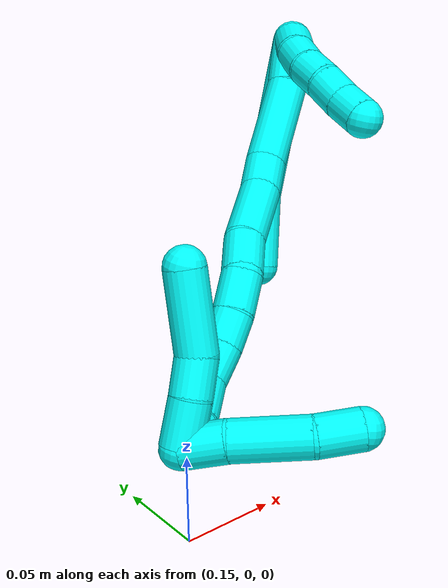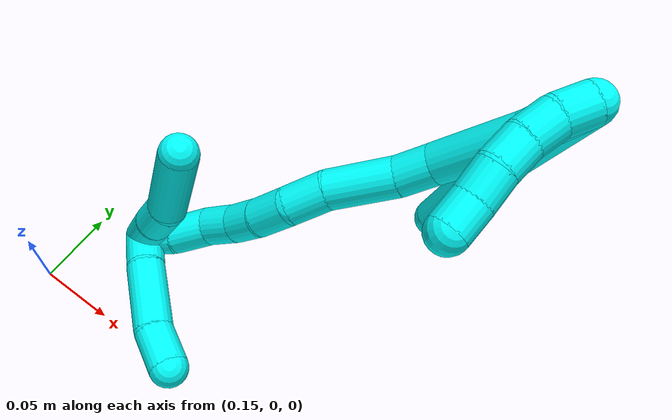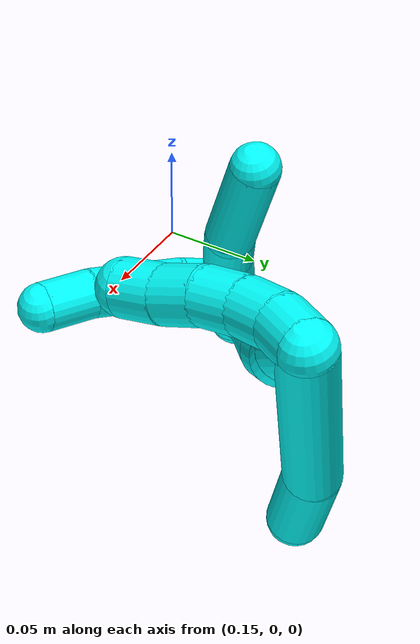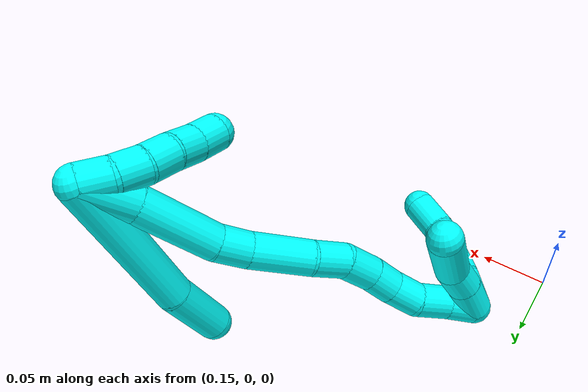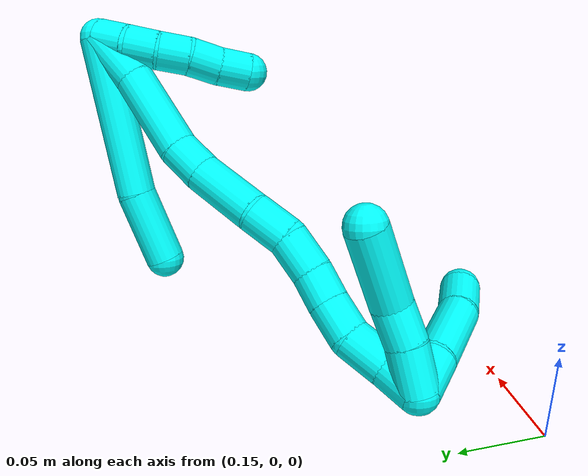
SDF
<sdf version="1.7">
 <world name="default">
  <model name="3">
   <static>0</static>
   <link name="3">
    <collision name="collision-cylinder-e_1_2_8">
     <pose>0.008674 0.001951 0.050682 -0.038471 0.169378 -0.003266</pose>
     <geometry><cylinder><radius>0.0125</radius><length>0.102912</length></cylinder></geometry>
     <surface>
      <friction><ode><mu>1.16</mu><mu2>1.16</mu2><slip1>0</slip1><slip2>0</slip2></ode></friction>
      <contact><ode><kp>1e+06</kp><kd>1</kd><max_vel>0</max_vel><min_depth>0.001</min_depth></ode></contact>
     </surface>
    </collision>
    <visual name="visual-cylinder-e_1_2_8">
     <pose>0.008674 0.001951 0.050682 -0.038471 0.169378 -0.003266</pose>
     <geometry><cylinder><radius>0.0125</radius><length>0.102912</length></cylinder></geometry>
     <material><ambient>0.003922 1 0.996078 1</ambient></material>
    </visual>
    <collision name="collision-cylinder-e_2_8_6">
     <pose>0.024608 0.002081 0.123686 0.081369 0.313485 0.012866</pose>
     <geometry><cylinder><radius>0.0125</radius><length>0.047088</length></cylinder></geometry>
     <surface>
      <friction><ode><mu>1.16</mu><mu2>1.16</mu2><slip1>0</slip1><slip2>0</slip2></ode></friction>
      <contact><ode><kp>1e+06</kp><kd>1</kd><max_vel>0</max_vel><min_depth>0.001</min_depth></ode></contact>
     </surface>
    </collision>
    <visual name="visual-cylinder-e_2_8_6">
     <pose>0.024608 0.002081 0.123686 0.081369 0.313485 0.012866</pose>
     <geometry><cylinder><radius>0.0125</radius><length>0.047088</length></cylinder></geometry>
     <material><ambient>0.003922 1 0.996078 1</ambient></material>
    </visual>
    <collision name="collision-cylinder-e_1_2_9">
     <pose>0.009676 0.000721 0.00242 -0.289399 1.31552 -0.224197</pose>
     <geometry><cylinder><radius>0.0125</radius><length>0.02</length></cylinder></geometry>
     <surface>
      <friction><ode><mu>1.16</mu><mu2>1.16</mu2><slip1>0</slip1><slip2>0</slip2></ode></friction>
      <contact><ode><kp>1e+06</kp><kd>1</kd><max_vel>0</max_vel><min_depth>0.001</min_depth></ode></contact>
     </surface>
    </collision>
    <visual name="visual-cylinder-e_1_2_9">
     <pose>0.009676 0.000721 0.00242 -0.289399 1.31552 -0.224197</pose>
     <geometry><cylinder><radius>0.0125</radius><length>0.02</length></cylinder></geometry>
     <material><ambient>0.003922 1 0.996078 1</ambient></material>
    </visual>
    <collision name="collision-cylinder-e_2_9_10">
     <pose>0.028825 -0.000435 0.007437 0.625631 1.2447 0.456034</pose>
     <geometry><cylinder><radius>0.0125</radius><length>0.02</length></cylinder></geometry>
     <surface>
      <friction><ode><mu>1.16</mu><mu2>1.16</mu2><slip1>0</slip1><slip2>0</slip2></ode></friction>
      <contact><ode><kp>1e+06</kp><kd>1</kd><max_vel>0</max_vel><min_depth>0.001</min_depth></ode></contact>
     </surface>
    </collision>
    <visual name="visual-cylinder-e_2_9_10">
     <pose>0.028825 -0.000435 0.007437 0.625631 1.2447 0.456034</pose>
     <geometry><cylinder><radius>0.0125</radius><length>0.02</length></cylinder></geometry>
     <material><ambient>0.003922 1 0.996078 1</ambient></material>
    </visual>
    <collision name="collision-cylinder-e_3_10_11">
     <pose>0.047292 -0.005999 0.012381 1.00408 1.11833 0.661797</pose>
     <geometry><cylinder><radius>0.0125</radius><length>0.02</length></cylinder></geometry>
     <surface>
      <friction><ode><mu>1.16</mu><mu2>1.16</mu2><slip1>0</slip1><slip2>0</slip2></ode></friction>
      <contact><ode><kp>1e+06</kp><kd>1</kd><max_vel>0</max_vel><min_depth>0.001</min_depth></ode></contact>
     </surface>
    </collision>
    <visual name="visual-cylinder-e_3_10_11">
     <pose>0.047292 -0.005999 0.012381 1.00408 1.11833 0.661797</pose>
     <geometry><cylinder><radius>0.0125</radius><length>0.02</length></cylinder></geometry>
     <material><ambient>0.003922 1 0.996078 1</ambient></material>
    </visual>
    <collision name="collision-cylinder-e_4_11_12">
     <pose>0.064378 -0.014325 0.018334 0.90989 0.942863 0.488757</pose>
     <geometry><cylinder><radius>0.0125</radius><length>0.02</length></cylinder></geometry>
     <surface>
      <friction><ode><mu>1.16</mu><mu2>1.16</mu2><slip1>0</slip1><slip2>0</slip2></ode></friction>
      <contact><ode><kp>1e+06</kp><kd>1</kd><max_vel>0</max_vel><min_depth>0.001</min_depth></ode></contact>
     </surface>
    </collision>
    <visual name="visual-cylinder-e_4_11_12">
     <pose>0.064378 -0.014325 0.018334 0.90989 0.942863 0.488757</pose>
     <geometry><cylinder><radius>0.0125</radius><length>0.02</length></cylinder></geometry>
     <material><ambient>0.003922 1 0.996078 1</ambient></material>
    </visual>
    <collision name="collision-cylinder-e_5_12_5">
     <pose>0.081156 -0.023243 0.024439 1.04236 1.05228 0.643658</pose>
     <geometry><cylinder><radius>0.0125</radius><length>0.02</length></cylinder></geometry>
     <surface>
      <friction><ode><mu>1.16</mu><mu2>1.16</mu2><slip1>0</slip1><slip2>0</slip2></ode></friction>
      <contact><ode><kp>1e+06</kp><kd>1</kd><max_vel>0</max_vel><min_depth>0.001</min_depth></ode></contact>
     </surface>
    </collision>
    <visual name="visual-cylinder-e_5_12_5">
     <pose>0.081156 -0.023243 0.024439 1.04236 1.05228 0.643658</pose>
     <geometry><cylinder><radius>0.0125</radius><length>0.02</length></cylinder></geometry>
     <material><ambient>0.003922 1 0.996078 1</ambient></material>
    </visual>
    <collision name="collision-cylinder-e_1_2_13">
     <pose>0.01168 0.002018 0.013361 -0.149895 0.712791 -0.055895</pose>
     <geometry><cylinder><radius>0.0125</radius><length>0.035721</length></cylinder></geometry>
     <surface>
      <friction><ode><mu>1.16</mu><mu2>1.16</mu2><slip1>0</slip1><slip2>0</slip2></ode></friction>
      <contact><ode><kp>1e+06</kp><kd>1</kd><max_vel>0</max_vel><min_depth>0.001</min_depth></ode></contact>
     </surface>
    </collision>
    <visual name="visual-cylinder-e_1_2_13">
     <pose>0.01168 0.002018 0.013361 -0.149895 0.712791 -0.055895</pose>
     <geometry><cylinder><radius>0.0125</radius><length>0.035721</length></cylinder></geometry>
     <material><ambient>0.003922 1 0.996078 1</ambient></material>
    </visual>
    <collision name="collision-cylinder-e_2_13_14">
     <pose>0.038735 0.010242 0.048886 -0.273036 0.588934 -0.083278</pose>
     <geometry><cylinder><radius>0.0125</radius><length>0.05536</length></cylinder></geometry>
     <surface>
      <friction><ode><mu>1.16</mu><mu2>1.16</mu2><slip1>0</slip1><slip2>0</slip2></ode></friction>
      <contact><ode><kp>1e+06</kp><kd>1</kd><max_vel>0</max_vel><min_depth>0.001</min_depth></ode></contact>
     </surface>
    </collision>
    <visual name="visual-cylinder-e_2_13_14">
     <pose>0.038735 0.010242 0.048886 -0.273036 0.588934 -0.083278</pose>
     <geometry><cylinder><radius>0.0125</radius><length>0.05536</length></cylinder></geometry>
     <material><ambient>0.003922 1 0.996078 1</ambient></material>
    </visual>
    <collision name="collision-cylinder-e_3_14_15">
     <pose>0.062365 0.018638 0.078633 -0.281088 0.807781 -0.120784</pose>
     <geometry><cylinder><radius>0.0125</radius><length>0.022842</length></cylinder></geometry>
     <surface>
      <friction><ode><mu>1.16</mu><mu2>1.16</mu2><slip1>0</slip1><slip2>0</slip2></ode></friction>
      <contact><ode><kp>1e+06</kp><kd>1</kd><max_vel>0</max_vel><min_depth>0.001</min_depth></ode></contact>
     </surface>
    </collision>
    <visual name="visual-cylinder-e_3_14_15">
     <pose>0.062365 0.018638 0.078633 -0.281088 0.807781 -0.120784</pose>
     <geometry><cylinder><radius>0.0125</radius><length>0.022842</length></cylinder></geometry>
     <material><ambient>0.003922 1 0.996078 1</ambient></material>
    </visual>
    <collision name="collision-cylinder-e_4_15_16">
     <pose>0.087838 0.027366 0.097364 -0.530427 0.926916 -0.269834</pose>
     <geometry><cylinder><radius>0.0125</radius><length>0.043058</length></cylinder></geometry>
     <surface>
      <friction><ode><mu>1.16</mu><mu2>1.16</mu2><slip1>0</slip1><slip2>0</slip2></ode></friction>
      <contact><ode><kp>1e+06</kp><kd>1</kd><max_vel>0</max_vel><min_depth>0.001</min_depth></ode></contact>
     </surface>
    </collision>
    <visual name="visual-cylinder-e_4_15_16">
     <pose>0.087838 0.027366 0.097364 -0.530427 0.926916 -0.269834</pose>
     <geometry><cylinder><radius>0.0125</radius><length>0.043058</length></cylinder></geometry>
     <material><ambient>0.003922 1 0.996078 1</ambient></material>
    </visual>
    <collision name="collision-cylinder-e_5_16_17">
     <pose>0.115409 0.035409 0.115991 -0.198596 0.935797 -0.100602</pose>
     <geometry><cylinder><radius>0.0125</radius><length>0.02572</length></cylinder></geometry>
     <surface>
      <friction><ode><mu>1.16</mu><mu2>1.16</mu2><slip1>0</slip1><slip2>0</slip2></ode></friction>
      <contact><ode><kp>1e+06</kp><kd>1</kd><max_vel>0</max_vel><min_depth>0.001</min_depth></ode></contact>
     </surface>
    </collision>
    <visual name="visual-cylinder-e_5_16_17">
     <pose>0.115409 0.035409 0.115991 -0.198596 0.935797 -0.100602</pose>
     <geometry><cylinder><radius>0.0125</radius><length>0.02572</length></cylinder></geometry>
     <material><ambient>0.003922 1 0.996078 1</ambient></material>
    </visual>
    <collision name="collision-cylinder-e_6_17_18">
     <pose>0.133086 0.039239 0.133353 -0.231034 0.624867 -0.074925</pose>
     <geometry><cylinder><radius>0.0125</radius><length>0.025038</length></cylinder></geometry>
     <surface>
      <friction><ode><mu>1.16</mu><mu2>1.16</mu2><slip1>0</slip1><slip2>0</slip2></ode></friction>
      <contact><ode><kp>1e+06</kp><kd>1</kd><max_vel>0</max_vel><min_depth>0.001</min_depth></ode></contact>
     </surface>
    </collision>
    <visual name="visual-cylinder-e_6_17_18">
     <pose>0.133086 0.039239 0.133353 -0.231034 0.624867 -0.074925</pose>
     <geometry><cylinder><radius>0.0125</radius><length>0.025038</length></cylinder></geometry>
     <material><ambient>0.003922 1 0.996078 1</ambient></material>
    </visual>
    <collision name="collision-cylinder-e_7_18_19">
     <pose>0.145471 0.044509 0.151697 -0.334976 0.514275 -0.088859</pose>
     <geometry><cylinder><radius>0.0125</radius><length>0.020579</length></cylinder></geometry>
     <surface>
      <friction><ode><mu>1.16</mu><mu2>1.16</mu2><slip1>0</slip1><slip2>0</slip2></ode></friction>
      <contact><ode><kp>1e+06</kp><kd>1</kd><max_vel>0</max_vel><min_depth>0.001</min_depth></ode></contact>
     </surface>
    </collision>
    <visual name="visual-cylinder-e_7_18_19">
     <pose>0.145471 0.044509 0.151697 -0.334976 0.514275 -0.088859</pose>
     <geometry><cylinder><radius>0.0125</radius><length>0.020579</length></cylinder></geometry>
     <material><ambient>0.003922 1 0.996078 1</ambient></material>
    </visual>
    <collision name="collision-cylinder-e_8_19_20">
     <pose>0.157062 0.051943 0.168658 -0.485807 0.596687 -0.152111</pose>
     <geometry><cylinder><radius>0.0125</radius><length>0.023241</length></cylinder></geometry>
     <surface>
      <friction><ode><mu>1.16</mu><mu2>1.16</mu2><slip1>0</slip1><slip2>0</slip2></ode></friction>
      <contact><ode><kp>1e+06</kp><kd>1</kd><max_vel>0</max_vel><min_depth>0.001</min_depth></ode></contact>
     </surface>
    </collision>
    <visual name="visual-cylinder-e_8_19_20">
     <pose>0.157062 0.051943 0.168658 -0.485807 0.596687 -0.152111</pose>
     <geometry><cylinder><radius>0.0125</radius><length>0.023241</length></cylinder></geometry>
     <material><ambient>0.003922 1 0.996078 1</ambient></material>
    </visual>
    <collision name="collision-cylinder-e_9_20_21">
     <pose>0.174228 0.059633 0.184216 -0.425963 0.941107 -0.219127</pose>
     <geometry><cylinder><radius>0.0125</radius><length>0.026319</length></cylinder></geometry>
     <surface>
      <friction><ode><mu>1.16</mu><mu2>1.16</mu2><slip1>0</slip1><slip2>0</slip2></ode></friction>
      <contact><ode><kp>1e+06</kp><kd>1</kd><max_vel>0</max_vel><min_depth>0.001</min_depth></ode></contact>
     </surface>
    </collision>
    <visual name="visual-cylinder-e_9_20_21">
     <pose>0.174228 0.059633 0.184216 -0.425963 0.941107 -0.219127</pose>
     <geometry><cylinder><radius>0.0125</radius><length>0.026319</length></cylinder></geometry>
     <material><ambient>0.003922 1 0.996078 1</ambient></material>
    </visual>
    <collision name="collision-cylinder-e_10_21_1">
     <pose>0.193437 0.067684 0.196306 -0.766774 0.886903 -0.378593</pose>
     <geometry><cylinder><radius>0.0125</radius><length>0.022122</length></cylinder></geometry>
     <surface>
      <friction><ode><mu>1.16</mu><mu2>1.16</mu2><slip1>0</slip1><slip2>0</slip2></ode></friction>
      <contact><ode><kp>1e+06</kp><kd>1</kd><max_vel>0</max_vel><min_depth>0.001</min_depth></ode></contact>
     </surface>
    </collision>
    <visual name="visual-cylinder-e_10_21_1">
     <pose>0.193437 0.067684 0.196306 -0.766774 0.886903 -0.378593</pose>
     <geometry><cylinder><radius>0.0125</radius><length>0.022122</length></cylinder></geometry>
     <material><ambient>0.003922 1 0.996078 1</ambient></material>
    </visual>
    <collision name="collision-cylinder-e_1_1_22">
     <pose>0.20632 0.06119 0.196138 2.00064 0.332592 0.511713</pose>
     <geometry><cylinder><radius>0.0125</radius><length>0.026402</length></cylinder></geometry>
     <surface>
      <friction><ode><mu>1.16</mu><mu2>1.16</mu2><slip1>0</slip1><slip2>0</slip2></ode></friction>
      <contact><ode><kp>1e+06</kp><kd>1</kd><max_vel>0</max_vel><min_depth>0.001</min_depth></ode></contact>
     </surface>
    </collision>
    <visual name="visual-cylinder-e_1_1_22">
     <pose>0.20632 0.06119 0.196138 2.00064 0.332592 0.511713</pose>
     <geometry><cylinder><radius>0.0125</radius><length>0.026402</length></cylinder></geometry>
     <material><ambient>0.003922 1 0.996078 1</ambient></material>
    </visual>
    <collision name="collision-cylinder-e_2_22_23">
     <pose>0.216874 0.028224 0.184594 1.85622 0.270293 0.359301</pose>
     <geometry><cylinder><radius>0.0125</radius><length>0.046768</length></cylinder></geometry>
     <surface>
      <friction><ode><mu>1.16</mu><mu2>1.16</mu2><slip1>0</slip1><slip2>0</slip2></ode></friction>
      <contact><ode><kp>1e+06</kp><kd>1</kd><max_vel>0</max_vel><min_depth>0.001</min_depth></ode></contact>
     </surface>
    </collision>
    <visual name="visual-cylinder-e_2_22_23">
     <pose>0.216874 0.028224 0.184594 1.85622 0.270293 0.359301</pose>
     <geometry><cylinder><radius>0.0125</radius><length>0.046768</length></cylinder></geometry>
     <material><ambient>0.003922 1 0.996078 1</ambient></material>
    </visual>
    <collision name="collision-cylinder-e_3_23_4">
     <pose>0.223689 -0.006233 0.174385 1.86321 0.042585 0.057285</pose>
     <geometry><cylinder><radius>0.0125</radius><length>0.026829</length></cylinder></geometry>
     <surface>
      <friction><ode><mu>1.16</mu><mu2>1.16</mu2><slip1>0</slip1><slip2>0</slip2></ode></friction>
      <contact><ode><kp>1e+06</kp><kd>1</kd><max_vel>0</max_vel><min_depth>0.001</min_depth></ode></contact>
     </surface>
    </collision>
    <visual name="visual-cylinder-e_3_23_4">
     <pose>0.223689 -0.006233 0.174385 1.86321 0.042585 0.057285</pose>
     <geometry><cylinder><radius>0.0125</radius><length>0.026829</length></cylinder></geometry>
     <material><ambient>0.003922 1 0.996078 1</ambient></material>
    </visual>
    <collision name="collision-cylinder-e_1_1_24">
     <pose>0.199231 0.071892 0.187697 3.09468 -0.200768 -2.68386</pose>
     <geometry><cylinder><radius>0.0125</radius><length>0.027872</length></cylinder></geometry>
     <surface>
      <friction><ode><mu>1.16</mu><mu2>1.16</mu2><slip1>0</slip1><slip2>0</slip2></ode></friction>
      <contact><ode><kp>1e+06</kp><kd>1</kd><max_vel>0</max_vel><min_depth>0.001</min_depth></ode></contact>
     </surface>
    </collision>
    <visual name="visual-cylinder-e_1_1_24">
     <pose>0.199231 0.071892 0.187697 3.09468 -0.200768 -2.68386</pose>
     <geometry><cylinder><radius>0.0125</radius><length>0.027872</length></cylinder></geometry>
     <material><ambient>0.003922 1 0.996078 1</ambient></material>
    </visual>
    <collision name="collision-cylinder-e_2_24_25">
     <pose>0.192758 0.070951 0.163127 3.11409 -0.325818 -2.97463</pose>
     <geometry><cylinder><radius>0.0125</radius><length>0.02308</length></cylinder></geometry>
     <surface>
      <friction><ode><mu>1.16</mu><mu2>1.16</mu2><slip1>0</slip1><slip2>0</slip2></ode></friction>
      <contact><ode><kp>1e+06</kp><kd>1</kd><max_vel>0</max_vel><min_depth>0.001</min_depth></ode></contact>
     </surface>
    </collision>
    <visual name="visual-cylinder-e_2_24_25">
     <pose>0.192758 0.070951 0.163127 3.11409 -0.325818 -2.97463</pose>
     <geometry><cylinder><radius>0.0125</radius><length>0.02308</length></cylinder></geometry>
     <material><ambient>0.003922 1 0.996078 1</ambient></material>
    </visual>
    <collision name="collision-cylinder-e_3_25_3">
     <pose>0.183813 0.077524 0.129251 -2.85058 -0.215821 1.27316</pose>
     <geometry><cylinder><radius>0.0125</radius><length>0.049048</length></cylinder></geometry>
     <surface>
      <friction><ode><mu>1.16</mu><mu2>1.16</mu2><slip1>0</slip1><slip2>0</slip2></ode></friction>
      <contact><ode><kp>1e+06</kp><kd>1</kd><max_vel>0</max_vel><min_depth>0.001</min_depth></ode></contact>
     </surface>
    </collision>
    <visual name="visual-cylinder-e_3_25_3">
     <pose>0.183813 0.077524 0.129251 -2.85058 -0.215821 1.27316</pose>
     <geometry><cylinder><radius>0.0125</radius><length>0.049048</length></cylinder></geometry>
     <material><ambient>0.003922 1 0.996078 1</ambient></material>
    </visual>
    <collision name="collision-sphere-3">
     <pose>0.178561 0.084397 0.106303 0 -0 0</pose>
     <geometry><sphere><radius>0.0125</radius></sphere></geometry>
     <surface>
      <friction><ode><mu>1.16</mu><mu2>1.16</mu2><slip1>0</slip1><slip2>0</slip2></ode></friction>
      <contact><ode><kp>1e+06</kp><kd>1</kd><max_vel>0</max_vel><min_depth>0.001</min_depth></ode></contact>
     </surface>
    </collision>
    <visual name="visual-sphere-3">
     <pose>0.178561 0.084397 0.106303 0 -0 0</pose>
     <geometry><sphere><radius>0.0125</radius></sphere></geometry>
     <material><ambient>0.003922 1 0.996078 1</ambient></material>
    </visual>
    <collision name="collision-sphere-25">
     <pose>0.189065 0.070651 0.152199 0 -0 0</pose>
     <geometry><sphere><radius>0.0125</radius></sphere></geometry>
     <surface>
      <friction><ode><mu>1.16</mu><mu2>1.16</mu2><slip1>0</slip1><slip2>0</slip2></ode></friction>
      <contact><ode><kp>1e+06</kp><kd>1</kd><max_vel>0</max_vel><min_depth>0.001</min_depth></ode></contact>
     </surface>
    </collision>
    <visual name="visual-sphere-25">
     <pose>0.189065 0.070651 0.152199 0 -0 0</pose>
     <geometry><sphere><radius>0.0125</radius></sphere></geometry>
     <material><ambient>0.003922 1 0.996078 1</ambient></material>
    </visual>
    <collision name="collision-sphere-24">
     <pose>0.196452 0.071252 0.174056 0 -0 0</pose>
     <geometry><sphere><radius>0.0125</radius></sphere></geometry>
     <surface>
      <friction><ode><mu>1.16</mu><mu2>1.16</mu2><slip1>0</slip1><slip2>0</slip2></ode></friction>
      <contact><ode><kp>1e+06</kp><kd>1</kd><max_vel>0</max_vel><min_depth>0.001</min_depth></ode></contact>
     </surface>
    </collision>
    <visual name="visual-sphere-24">
     <pose>0.196452 0.071252 0.174056 0 -0 0</pose>
     <geometry><sphere><radius>0.0125</radius></sphere></geometry>
     <material><ambient>0.003922 1 0.996078 1</ambient></material>
    </visual>
    <collision name="collision-sphere-4">
     <pose>0.22426 -0.019067 0.170522 0 -0 0</pose>
     <geometry><sphere><radius>0.0125</radius></sphere></geometry>
     <surface>
      <friction><ode><mu>1.16</mu><mu2>1.16</mu2><slip1>0</slip1><slip2>0</slip2></ode></friction>
      <contact><ode><kp>1e+06</kp><kd>1</kd><max_vel>0</max_vel><min_depth>0.001</min_depth></ode></contact>
     </surface>
    </collision>
    <visual name="visual-sphere-4">
     <pose>0.22426 -0.019067 0.170522 0 -0 0</pose>
     <geometry><sphere><radius>0.0125</radius></sphere></geometry>
     <material><ambient>0.003922 1 0.996078 1</ambient></material>
    </visual>
    <collision name="collision-sphere-23">
     <pose>0.223118 0.006601 0.178248 0 -0 0</pose>
     <geometry><sphere><radius>0.0125</radius></sphere></geometry>
     <surface>
      <friction><ode><mu>1.16</mu><mu2>1.16</mu2><slip1>0</slip1><slip2>0</slip2></ode></friction>
      <contact><ode><kp>1e+06</kp><kd>1</kd><max_vel>0</max_vel><min_depth>0.001</min_depth></ode></contact>
     </surface>
    </collision>
    <visual name="visual-sphere-23">
     <pose>0.223118 0.006601 0.178248 0 -0 0</pose>
     <geometry><sphere><radius>0.0125</radius></sphere></geometry>
     <material><ambient>0.003922 1 0.996078 1</ambient></material>
    </visual>
    <collision name="collision-sphere-22">
     <pose>0.210631 0.049848 0.190939 0 -0 0</pose>
     <geometry><sphere><radius>0.0125</radius></sphere></geometry>
     <surface>
      <friction><ode><mu>1.16</mu><mu2>1.16</mu2><slip1>0</slip1><slip2>0</slip2></ode></friction>
      <contact><ode><kp>1e+06</kp><kd>1</kd><max_vel>0</max_vel><min_depth>0.001</min_depth></ode></contact>
     </surface>
    </collision>
    <visual name="visual-sphere-22">
     <pose>0.210631 0.049848 0.190939 0 -0 0</pose>
     <geometry><sphere><radius>0.0125</radius></sphere></geometry>
     <material><ambient>0.003922 1 0.996078 1</ambient></material>
    </visual>
    <collision name="collision-sphere-1">
     <pose>0.20201 0.072533 0.201338 0 -0 0</pose>
     <geometry><sphere><radius>0.0125</radius></sphere></geometry>
     <surface>
      <friction><ode><mu>1.16</mu><mu2>1.16</mu2><slip1>0</slip1><slip2>0</slip2></ode></friction>
      <contact><ode><kp>1e+06</kp><kd>1</kd><max_vel>0</max_vel><min_depth>0.001</min_depth></ode></contact>
     </surface>
    </collision>
    <visual name="visual-sphere-1">
     <pose>0.20201 0.072533 0.201338 0 -0 0</pose>
     <geometry><sphere><radius>0.0125</radius></sphere></geometry>
     <material><ambient>0.003922 1 0.996078 1</ambient></material>
    </visual>
    <collision name="collision-sphere-21">
     <pose>0.184863 0.062835 0.191273 0 -0 0</pose>
     <geometry><sphere><radius>0.0125</radius></sphere></geometry>
     <surface>
      <friction><ode><mu>1.16</mu><mu2>1.16</mu2><slip1>0</slip1><slip2>0</slip2></ode></friction>
      <contact><ode><kp>1e+06</kp><kd>1</kd><max_vel>0</max_vel><min_depth>0.001</min_depth></ode></contact>
     </surface>
    </collision>
    <visual name="visual-sphere-21">
     <pose>0.184863 0.062835 0.191273 0 -0 0</pose>
     <geometry><sphere><radius>0.0125</radius></sphere></geometry>
     <material><ambient>0.003922 1 0.996078 1</ambient></material>
    </visual>
    <collision name="collision-sphere-11">
     <pose>0.056285 -0.009687 0.014728 0 -0 0</pose>
     <geometry><sphere><radius>0.0125</radius></sphere></geometry>
     <surface>
      <friction><ode><mu>1.16</mu><mu2>1.16</mu2><slip1>0</slip1><slip2>0</slip2></ode></friction>
      <contact><ode><kp>1e+06</kp><kd>1</kd><max_vel>0</max_vel><min_depth>0.001</min_depth></ode></contact>
     </surface>
    </collision>
    <visual name="visual-sphere-11">
     <pose>0.056285 -0.009687 0.014728 0 -0 0</pose>
     <geometry><sphere><radius>0.0125</radius></sphere></geometry>
     <material><ambient>0.003922 1 0.996078 1</ambient></material>
    </visual>
    <collision name="collision-sphere-10">
     <pose>0.038298 -0.002311 0.010034 0 -0 0</pose>
     <geometry><sphere><radius>0.0125</radius></sphere></geometry>
     <surface>
      <friction><ode><mu>1.16</mu><mu2>1.16</mu2><slip1>0</slip1><slip2>0</slip2></ode></friction>
      <contact><ode><kp>1e+06</kp><kd>1</kd><max_vel>0</max_vel><min_depth>0.001</min_depth></ode></contact>
     </surface>
    </collision>
    <visual name="visual-sphere-10">
     <pose>0.038298 -0.002311 0.010034 0 -0 0</pose>
     <geometry><sphere><radius>0.0125</radius></sphere></geometry>
     <material><ambient>0.003922 1 0.996078 1</ambient></material>
    </visual>
    <collision name="collision-sphere-6">
     <pose>0.031869 0.000261 0.146009 0 -0 0</pose>
     <geometry><sphere><radius>0.0125</radius></sphere></geometry>
     <surface>
      <friction><ode><mu>1.16</mu><mu2>1.16</mu2><slip1>0</slip1><slip2>0</slip2></ode></friction>
      <contact><ode><kp>1e+06</kp><kd>1</kd><max_vel>0</max_vel><min_depth>0.001</min_depth></ode></contact>
     </surface>
    </collision>
    <visual name="visual-sphere-6">
     <pose>0.031869 0.000261 0.146009 0 -0 0</pose>
     <geometry><sphere><radius>0.0125</radius></sphere></geometry>
     <material><ambient>0.003922 1 0.996078 1</ambient></material>
    </visual>
    <collision name="collision-sphere-9">
     <pose>0.019352 0.001441 0.00484 0 -0 0</pose>
     <geometry><sphere><radius>0.0125</radius></sphere></geometry>
     <surface>
      <friction><ode><mu>1.16</mu><mu2>1.16</mu2><slip1>0</slip1><slip2>0</slip2></ode></friction>
      <contact><ode><kp>1e+06</kp><kd>1</kd><max_vel>0</max_vel><min_depth>0.001</min_depth></ode></contact>
     </surface>
    </collision>
    <visual name="visual-sphere-9">
     <pose>0.019352 0.001441 0.00484 0 -0 0</pose>
     <geometry><sphere><radius>0.0125</radius></sphere></geometry>
     <material><ambient>0.003922 1 0.996078 1</ambient></material>
    </visual>
    <collision name="collision-sphere-2">
     <geometry><sphere><radius>0.0125</radius></sphere></geometry>
     <surface>
      <friction><ode><mu>1.16</mu><mu2>1.16</mu2><slip1>0</slip1><slip2>0</slip2></ode></friction>
      <contact><ode><kp>1e+06</kp><kd>1</kd><max_vel>0</max_vel><min_depth>0.001</min_depth></ode></contact>
     </surface>
    </collision>
    <visual name="visual-sphere-2">
     <geometry><sphere><radius>0.0125</radius></sphere></geometry>
     <material><ambient>0.003922 1 0.996078 1</ambient></material>
    </visual>
    <collision name="collision-sphere-19">
     <pose>0.150533 0.047455 0.160158 0 -0 0</pose>
     <geometry><sphere><radius>0.0125</radius></sphere></geometry>
     <surface>
      <friction><ode><mu>1.16</mu><mu2>1.16</mu2><slip1>0</slip1><slip2>0</slip2></ode></friction>
      <contact><ode><kp>1e+06</kp><kd>1</kd><max_vel>0</max_vel><min_depth>0.001</min_depth></ode></contact>
     </surface>
    </collision>
    <visual name="visual-sphere-19">
     <pose>0.150533 0.047455 0.160158 0 -0 0</pose>
     <geometry><sphere><radius>0.0125</radius></sphere></geometry>
     <material><ambient>0.003922 1 0.996078 1</ambient></material>
    </visual>
    <collision name="collision-sphere-8">
     <pose>0.017348 0.003902 0.101364 0 -0 0</pose>
     <geometry><sphere><radius>0.0125</radius></sphere></geometry>
     <surface>
      <friction><ode><mu>1.16</mu><mu2>1.16</mu2><slip1>0</slip1><slip2>0</slip2></ode></friction>
      <contact><ode><kp>1e+06</kp><kd>1</kd><max_vel>0</max_vel><min_depth>0.001</min_depth></ode></contact>
     </surface>
    </collision>
    <visual name="visual-sphere-8">
     <pose>0.017348 0.003902 0.101364 0 -0 0</pose>
     <geometry><sphere><radius>0.0125</radius></sphere></geometry>
     <material><ambient>0.003922 1 0.996078 1</ambient></material>
    </visual>
    <collision name="collision-sphere-12">
     <pose>0.07247 -0.018963 0.02194 0 -0 0</pose>
     <geometry><sphere><radius>0.0125</radius></sphere></geometry>
     <surface>
      <friction><ode><mu>1.16</mu><mu2>1.16</mu2><slip1>0</slip1><slip2>0</slip2></ode></friction>
      <contact><ode><kp>1e+06</kp><kd>1</kd><max_vel>0</max_vel><min_depth>0.001</min_depth></ode></contact>
     </surface>
    </collision>
    <visual name="visual-sphere-12">
     <pose>0.07247 -0.018963 0.02194 0 -0 0</pose>
     <geometry><sphere><radius>0.0125</radius></sphere></geometry>
     <material><ambient>0.003922 1 0.996078 1</ambient></material>
    </visual>
    <collision name="collision-sphere-5">
     <pose>0.089841 -0.027523 0.026937 0 -0 0</pose>
     <geometry><sphere><radius>0.0125</radius></sphere></geometry>
     <surface>
      <friction><ode><mu>1.16</mu><mu2>1.16</mu2><slip1>0</slip1><slip2>0</slip2></ode></friction>
      <contact><ode><kp>1e+06</kp><kd>1</kd><max_vel>0</max_vel><min_depth>0.001</min_depth></ode></contact>
     </surface>
    </collision>
    <visual name="visual-sphere-5">
     <pose>0.089841 -0.027523 0.026937 0 -0 0</pose>
     <geometry><sphere><radius>0.0125</radius></sphere></geometry>
     <material><ambient>0.003922 1 0.996078 1</ambient></material>
    </visual>
    <collision name="collision-sphere-13">
     <pose>0.02336 0.004036 0.026722 0 -0 0</pose>
     <geometry><sphere><radius>0.0125</radius></sphere></geometry>
     <surface>
      <friction><ode><mu>1.16</mu><mu2>1.16</mu2><slip1>0</slip1><slip2>0</slip2></ode></friction>
      <contact><ode><kp>1e+06</kp><kd>1</kd><max_vel>0</max_vel><min_depth>0.001</min_depth></ode></contact>
     </surface>
    </collision>
    <visual name="visual-sphere-13">
     <pose>0.02336 0.004036 0.026722 0 -0 0</pose>
     <geometry><sphere><radius>0.0125</radius></sphere></geometry>
     <material><ambient>0.003922 1 0.996078 1</ambient></material>
    </visual>
    <collision name="collision-sphere-14">
     <pose>0.054111 0.016449 0.07105 0 -0 0</pose>
     <geometry><sphere><radius>0.0125</radius></sphere></geometry>
     <surface>
      <friction><ode><mu>1.16</mu><mu2>1.16</mu2><slip1>0</slip1><slip2>0</slip2></ode></friction>
      <contact><ode><kp>1e+06</kp><kd>1</kd><max_vel>0</max_vel><min_depth>0.001</min_depth></ode></contact>
     </surface>
    </collision>
    <visual name="visual-sphere-14">
     <pose>0.054111 0.016449 0.07105 0 -0 0</pose>
     <geometry><sphere><radius>0.0125</radius></sphere></geometry>
     <material><ambient>0.003922 1 0.996078 1</ambient></material>
    </visual>
    <collision name="collision-sphere-15">
     <pose>0.07062 0.020828 0.086216 0 -0 0</pose>
     <geometry><sphere><radius>0.0125</radius></sphere></geometry>
     <surface>
      <friction><ode><mu>1.16</mu><mu2>1.16</mu2><slip1>0</slip1><slip2>0</slip2></ode></friction>
      <contact><ode><kp>1e+06</kp><kd>1</kd><max_vel>0</max_vel><min_depth>0.001</min_depth></ode></contact>
     </surface>
    </collision>
    <visual name="visual-sphere-15">
     <pose>0.07062 0.020828 0.086216 0 -0 0</pose>
     <geometry><sphere><radius>0.0125</radius></sphere></geometry>
     <material><ambient>0.003922 1 0.996078 1</ambient></material>
    </visual>
    <collision name="collision-sphere-16">
     <pose>0.105056 0.033904 0.108512 0 -0 0</pose>
     <geometry><sphere><radius>0.0125</radius></sphere></geometry>
     <surface>
      <friction><ode><mu>1.16</mu><mu2>1.16</mu2><slip1>0</slip1><slip2>0</slip2></ode></friction>
      <contact><ode><kp>1e+06</kp><kd>1</kd><max_vel>0</max_vel><min_depth>0.001</min_depth></ode></contact>
     </surface>
    </collision>
    <visual name="visual-sphere-16">
     <pose>0.105056 0.033904 0.108512 0 -0 0</pose>
     <geometry><sphere><radius>0.0125</radius></sphere></geometry>
     <material><ambient>0.003922 1 0.996078 1</ambient></material>
    </visual>
    <collision name="collision-sphere-17">
     <pose>0.125763 0.036914 0.123469 0 -0 0</pose>
     <geometry><sphere><radius>0.0125</radius></sphere></geometry>
     <surface>
      <friction><ode><mu>1.16</mu><mu2>1.16</mu2><slip1>0</slip1><slip2>0</slip2></ode></friction>
      <contact><ode><kp>1e+06</kp><kd>1</kd><max_vel>0</max_vel><min_depth>0.001</min_depth></ode></contact>
     </surface>
    </collision>
    <visual name="visual-sphere-17">
     <pose>0.125763 0.036914 0.123469 0 -0 0</pose>
     <geometry><sphere><radius>0.0125</radius></sphere></geometry>
     <material><ambient>0.003922 1 0.996078 1</ambient></material>
    </visual>
    <collision name="collision-sphere-18">
     <pose>0.14041 0.041564 0.143236 0 -0 0</pose>
     <geometry><sphere><radius>0.0125</radius></sphere></geometry>
     <surface>
      <friction><ode><mu>1.16</mu><mu2>1.16</mu2><slip1>0</slip1><slip2>0</slip2></ode></friction>
      <contact><ode><kp>1e+06</kp><kd>1</kd><max_vel>0</max_vel><min_depth>0.001</min_depth></ode></contact>
     </surface>
    </collision>
    <visual name="visual-sphere-18">
     <pose>0.14041 0.041564 0.143236 0 -0 0</pose>
     <geometry><sphere><radius>0.0125</radius></sphere></geometry>
     <material><ambient>0.003922 1 0.996078 1</ambient></material>
    </visual>
    <collision name="collision-sphere-20">
     <pose>0.163592 0.056431 0.177159 0 -0 0</pose>
     <geometry><sphere><radius>0.0125</radius></sphere></geometry>
     <surface>
      <friction><ode><mu>1.16</mu><mu2>1.16</mu2><slip1>0</slip1><slip2>0</slip2></ode></friction>
      <contact><ode><kp>1e+06</kp><kd>1</kd><max_vel>0</max_vel><min_depth>0.001</min_depth></ode></contact>
     </surface>
    </collision>
    <visual name="visual-sphere-20">
     <pose>0.163592 0.056431 0.177159 0 -0 0</pose>
     <geometry><sphere><radius>0.0125</radius></sphere></geometry>
     <material><ambient>0.003922 1 0.996078 1</ambient></material>
    </visual>
    <inertial>
     <pose>0.102486 0.025295 0.103858 0 -0 0</pose>
     <mass>0.75</mass>
     <inertia>
      <ixx>0.000188</ixx>
      <ixy>0</ixy>
      <ixz>0</ixz>
      <iyy>0.000162</iyy>
      <iyz>0</iyz>
      <izz>-3.5e-05</izz>
     </inertia>
    </inertial>
   </link>
   <pose>0.388503 0.203066 0.168165 2.90967 -0.107022 -2.02627</pose>
  </model>
 </world>
</sdf>
